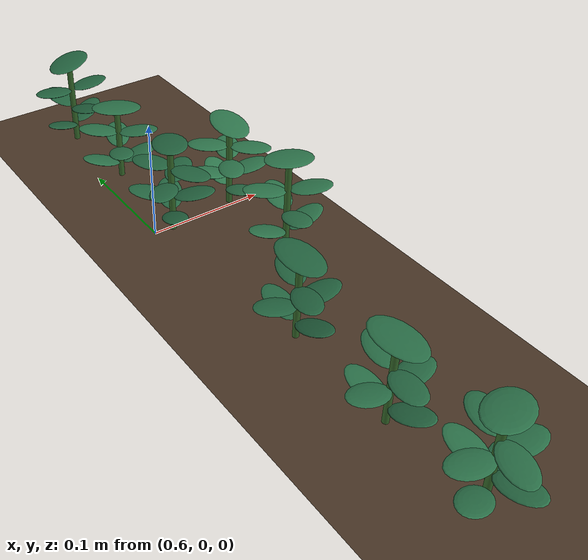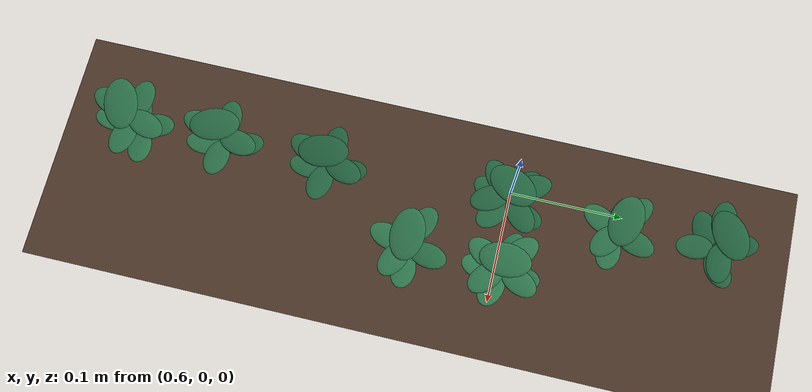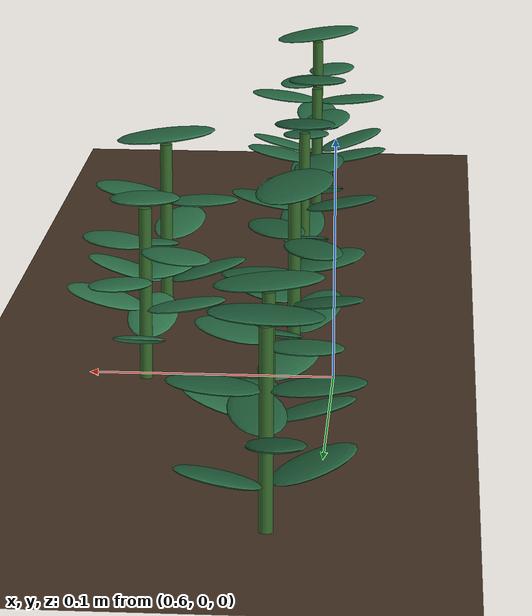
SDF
<sdf version="1.9">
 <world name="jim_field">
  <model name="ground_plane">
   <static>true</static>
   <link name="link">
    <collision name="collision">
     <geometry><plane><normal>0 0 1</normal><size>40 40</size></plane></geometry>
    </collision>
    <visual name="visual">
     <geometry><plane><normal>0 0 1</normal><size>40 40</size></plane></geometry>
     <material>
      <ambient>0.20 0.15 0.11 1</ambient>
      <diffuse>0.30 0.22 0.16 1</diffuse>
      <specular>0.01 0.01 0.01 1</specular>
     </material>
    </visual>
   </link>
  </model>
  <model name="field">
   <static>true</static>
   <pose>0.1837 -0.2516 0 0 0 0</pose>
   <model name="crop_83">
    <static>true</static>
    <pose>0.4379 -0.0803 0 0 0 0</pose>
    <link name="link">
     <visual name="stem">
      <pose>0 0 0.0381 0 0 0</pose>
      <geometry><cylinder><radius>0.0026</radius><length>0.0761</length></cylinder></geometry>
      <material>
       <ambient>0.10 0.22 0.09 1</ambient>
       <diffuse>0.20 0.40 0.16 1</diffuse>
       <specular>0.05 0.06 0.05 1</specular>
      </material>
     </visual>
     <visual name="leaflet_0_0">
      <pose>-0.0173 -0.0051 0.0228 0 -0.300 3.4297</pose>
      <geometry><ellipsoid><radii>0.0170 0.0105 0.0016</radii></ellipsoid></geometry>
      <material>
       <ambient>0.088 0.230 0.134 1</ambient>
       <diffuse>0.166 0.440 0.282 1</diffuse>
       <specular>0.05 0.06 0.05 1</specular>
      </material>
     </visual>
     <visual name="leaflet_0_1">
      <pose>0.0173 0.0051 0.0228 0 -0.300 6.5713</pose>
      <geometry><ellipsoid><radii>0.0170 0.0105 0.0016</radii></ellipsoid></geometry>
      <material>
       <ambient>0.088 0.230 0.134 1</ambient>
       <diffuse>0.166 0.440 0.282 1</diffuse>
       <specular>0.05 0.06 0.05 1</specular>
      </material>
     </visual>
     <visual name="leaflet_1_0">
      <pose>0.0012 -0.0180 0.0346 0 -0.200 4.7797</pose>
      <geometry><ellipsoid><radii>0.0170 0.0105 0.0016</radii></ellipsoid></geometry>
      <material>
       <ambient>0.088 0.230 0.134 1</ambient>
       <diffuse>0.166 0.440 0.282 1</diffuse>
       <specular>0.05 0.06 0.05 1</specular>
      </material>
     </visual>
     <visual name="leaflet_1_1">
      <pose>-0.0012 0.0180 0.0346 0 -0.200 7.9213</pose>
      <geometry><ellipsoid><radii>0.0170 0.0105 0.0016</radii></ellipsoid></geometry>
      <material>
       <ambient>0.088 0.230 0.134 1</ambient>
       <diffuse>0.166 0.440 0.282 1</diffuse>
       <specular>0.05 0.06 0.05 1</specular>
      </material>
     </visual>
     <visual name="leaflet_2_0">
      <pose>0.0178 -0.0028 0.0464 0 -0.100 6.1297</pose>
      <geometry><ellipsoid><radii>0.0170 0.0105 0.0016</radii></ellipsoid></geometry>
      <material>
       <ambient>0.088 0.230 0.134 1</ambient>
       <diffuse>0.166 0.440 0.282 1</diffuse>
       <specular>0.05 0.06 0.05 1</specular>
      </material>
     </visual>
     <visual name="leaflet_2_1">
      <pose>-0.0178 0.0028 0.0464 0 -0.100 9.2713</pose>
      <geometry><ellipsoid><radii>0.0170 0.0105 0.0016</radii></ellipsoid></geometry>
      <material>
       <ambient>0.088 0.230 0.134 1</ambient>
       <diffuse>0.166 0.440 0.282 1</diffuse>
       <specular>0.05 0.06 0.05 1</specular>
      </material>
     </visual>
     <visual name="leaflet_3_0">
      <pose>0.0066 0.0168 0.0583 0 0.000 7.4797</pose>
      <geometry><ellipsoid><radii>0.0170 0.0105 0.0016</radii></ellipsoid></geometry>
      <material>
       <ambient>0.088 0.230 0.134 1</ambient>
       <diffuse>0.166 0.440 0.282 1</diffuse>
       <specular>0.05 0.06 0.05 1</specular>
      </material>
     </visual>
     <visual name="leaflet_3_1">
      <pose>-0.0066 -0.0168 0.0583 0 0.000 10.6213</pose>
      <geometry><ellipsoid><radii>0.0170 0.0105 0.0016</radii></ellipsoid></geometry>
      <material>
       <ambient>0.088 0.230 0.134 1</ambient>
       <diffuse>0.166 0.440 0.282 1</diffuse>
       <specular>0.05 0.06 0.05 1</specular>
      </material>
     </visual>
     <visual name="leaflet_terminal">
      <pose>0 0 0.0801 0 -0.12 3.4297</pose>
      <geometry><ellipsoid><radii>0.0215 0.0140 0.0018</radii></ellipsoid></geometry>
      <material>
       <ambient>0.088 0.230 0.134 1</ambient>
       <diffuse>0.166 0.440 0.282 1</diffuse>
       <specular>0.05 0.06 0.05 1</specular>
      </material>
     </visual>
    </link>
   </model>
   <model name="crop_100">
    <static>true</static>
    <pose>0.4349 -0.0025 0 0 0 0</pose>
    <link name="link">
     <visual name="stem">
      <pose>0 0 0.0337 0 0 0</pose>
      <geometry><cylinder><radius>0.0025</radius><length>0.0674</length></cylinder></geometry>
      <material>
       <ambient>0.10 0.22 0.09 1</ambient>
       <diffuse>0.20 0.40 0.16 1</diffuse>
       <specular>0.05 0.06 0.05 1</specular>
      </material>
     </visual>
     <visual name="leaflet_0_0">
      <pose>-0.0032 0.0173 0.0202 0 -0.300 1.7517</pose>
      <geometry><ellipsoid><radii>0.0170 0.0105 0.0016</radii></ellipsoid></geometry>
      <material>
       <ambient>0.084 0.223 0.128 1</ambient>
       <diffuse>0.157 0.425 0.272 1</diffuse>
       <specular>0.05 0.06 0.05 1</specular>
      </material>
     </visual>
     <visual name="leaflet_0_1">
      <pose>0.0032 -0.0173 0.0202 0 -0.300 4.8933</pose>
      <geometry><ellipsoid><radii>0.0170 0.0105 0.0016</radii></ellipsoid></geometry>
      <material>
       <ambient>0.084 0.223 0.128 1</ambient>
       <diffuse>0.157 0.425 0.272 1</diffuse>
       <specular>0.05 0.06 0.05 1</specular>
      </material>
     </visual>
     <visual name="leaflet_1_0">
      <pose>-0.0176 0.0007 0.0341 0 -0.200 3.1017</pose>
      <geometry><ellipsoid><radii>0.0170 0.0105 0.0016</radii></ellipsoid></geometry>
      <material>
       <ambient>0.084 0.223 0.128 1</ambient>
       <diffuse>0.157 0.425 0.272 1</diffuse>
       <specular>0.05 0.06 0.05 1</specular>
      </material>
     </visual>
     <visual name="leaflet_1_1">
      <pose>0.0176 -0.0007 0.0341 0 -0.200 6.2433</pose>
      <geometry><ellipsoid><radii>0.0170 0.0105 0.0016</radii></ellipsoid></geometry>
      <material>
       <ambient>0.084 0.223 0.128 1</ambient>
       <diffuse>0.157 0.425 0.272 1</diffuse>
       <specular>0.05 0.06 0.05 1</specular>
      </material>
     </visual>
     <visual name="leaflet_2_0">
      <pose>-0.0045 -0.0170 0.0481 0 -0.100 4.4517</pose>
      <geometry><ellipsoid><radii>0.0170 0.0105 0.0016</radii></ellipsoid></geometry>
      <material>
       <ambient>0.084 0.223 0.128 1</ambient>
       <diffuse>0.157 0.425 0.272 1</diffuse>
       <specular>0.05 0.06 0.05 1</specular>
      </material>
     </visual>
     <visual name="leaflet_2_1">
      <pose>0.0045 0.0170 0.0481 0 -0.100 7.5933</pose>
      <geometry><ellipsoid><radii>0.0170 0.0105 0.0016</radii></ellipsoid></geometry>
      <material>
       <ambient>0.084 0.223 0.128 1</ambient>
       <diffuse>0.157 0.425 0.272 1</diffuse>
       <specular>0.05 0.06 0.05 1</specular>
      </material>
     </visual>
     <visual name="leaflet_terminal">
      <pose>0 0 0.0714 0 -0.12 1.7517</pose>
      <geometry><ellipsoid><radii>0.0215 0.0140 0.0018</radii></ellipsoid></geometry>
      <material>
       <ambient>0.084 0.223 0.128 1</ambient>
       <diffuse>0.157 0.425 0.272 1</diffuse>
       <specular>0.05 0.06 0.05 1</specular>
      </material>
     </visual>
    </link>
   </model>
   <model name="crop_117">
    <static>true</static>
    <pose>0.4364 0.0913 0 0 0 0</pose>
    <link name="link">
     <visual name="stem">
      <pose>0 0 0.0331 0 0 0</pose>
      <geometry><cylinder><radius>0.0025</radius><length>0.0662</length></cylinder></geometry>
      <material>
       <ambient>0.10 0.22 0.09 1</ambient>
       <diffuse>0.20 0.40 0.16 1</diffuse>
       <specular>0.05 0.06 0.05 1</specular>
      </material>
     </visual>
     <visual name="leaflet_0_0">
      <pose>-0.0016 0.0175 0.0199 0 -0.300 1.6620</pose>
      <geometry><ellipsoid><radii>0.0170 0.0105 0.0016</radii></ellipsoid></geometry>
      <material>
       <ambient>0.072 0.204 0.113 1</ambient>
       <diffuse>0.135 0.388 0.246 1</diffuse>
       <specular>0.05 0.06 0.05 1</specular>
      </material>
     </visual>
     <visual name="leaflet_0_1">
      <pose>0.0016 -0.0175 0.0199 0 -0.300 4.8036</pose>
      <geometry><ellipsoid><radii>0.0170 0.0105 0.0016</radii></ellipsoid></geometry>
      <material>
       <ambient>0.072 0.204 0.113 1</ambient>
       <diffuse>0.135 0.388 0.246 1</diffuse>
       <specular>0.05 0.06 0.05 1</specular>
      </material>
     </visual>
     <visual name="leaflet_1_0">
      <pose>-0.0174 0.0023 0.0336 0 -0.200 3.0120</pose>
      <geometry><ellipsoid><radii>0.0170 0.0105 0.0016</radii></ellipsoid></geometry>
      <material>
       <ambient>0.072 0.204 0.113 1</ambient>
       <diffuse>0.135 0.388 0.246 1</diffuse>
       <specular>0.05 0.06 0.05 1</specular>
      </material>
     </visual>
     <visual name="leaflet_1_1">
      <pose>0.0174 -0.0023 0.0336 0 -0.200 6.1536</pose>
      <geometry><ellipsoid><radii>0.0170 0.0105 0.0016</radii></ellipsoid></geometry>
      <material>
       <ambient>0.072 0.204 0.113 1</ambient>
       <diffuse>0.135 0.388 0.246 1</diffuse>
       <specular>0.05 0.06 0.05 1</specular>
      </material>
     </visual>
     <visual name="leaflet_2_0">
      <pose>-0.0060 -0.0165 0.0472 0 -0.100 4.3620</pose>
      <geometry><ellipsoid><radii>0.0170 0.0105 0.0016</radii></ellipsoid></geometry>
      <material>
       <ambient>0.072 0.204 0.113 1</ambient>
       <diffuse>0.135 0.388 0.246 1</diffuse>
       <specular>0.05 0.06 0.05 1</specular>
      </material>
     </visual>
     <visual name="leaflet_2_1">
      <pose>0.0060 0.0165 0.0472 0 -0.100 7.5036</pose>
      <geometry><ellipsoid><radii>0.0170 0.0105 0.0016</radii></ellipsoid></geometry>
      <material>
       <ambient>0.072 0.204 0.113 1</ambient>
       <diffuse>0.135 0.388 0.246 1</diffuse>
       <specular>0.05 0.06 0.05 1</specular>
      </material>
     </visual>
     <visual name="leaflet_terminal">
      <pose>0 0 0.0702 0 -0.12 1.6620</pose>
      <geometry><ellipsoid><radii>0.0215 0.0140 0.0018</radii></ellipsoid></geometry>
      <material>
       <ambient>0.072 0.204 0.113 1</ambient>
       <diffuse>0.135 0.388 0.246 1</diffuse>
       <specular>0.05 0.06 0.05 1</specular>
      </material>
     </visual>
    </link>
   </model>
   <model name="crop_135">
    <static>true</static>
    <pose>0.4921 0.1763 0 0 0 0</pose>
    <link name="link">
     <visual name="stem">
      <pose>0 0 0.0397 0 0 0</pose>
      <geometry><cylinder><radius>0.0026</radius><length>0.0794</length></cylinder></geometry>
      <material>
       <ambient>0.10 0.22 0.09 1</ambient>
       <diffuse>0.20 0.40 0.16 1</diffuse>
       <specular>0.05 0.06 0.05 1</specular>
      </material>
     </visual>
     <visual name="leaflet_0_0">
      <pose>-0.0182 0.0002 0.0238 0 -0.300 3.1298</pose>
      <geometry><ellipsoid><radii>0.0170 0.0105 0.0016</radii></ellipsoid></geometry>
      <material>
       <ambient>0.091 0.236 0.139 1</ambient>
       <diffuse>0.173 0.452 0.290 1</diffuse>
       <specular>0.05 0.06 0.05 1</specular>
      </material>
     </visual>
     <visual name="leaflet_0_1">
      <pose>0.0182 -0.0002 0.0238 0 -0.300 6.2714</pose>
      <geometry><ellipsoid><radii>0.0170 0.0105 0.0016</radii></ellipsoid></geometry>
      <material>
       <ambient>0.091 0.236 0.139 1</ambient>
       <diffuse>0.173 0.452 0.290 1</diffuse>
       <specular>0.05 0.06 0.05 1</specular>
      </material>
     </visual>
     <visual name="leaflet_1_0">
      <pose>-0.0042 -0.0177 0.0402 0 -0.200 4.4798</pose>
      <geometry><ellipsoid><radii>0.0170 0.0105 0.0016</radii></ellipsoid></geometry>
      <material>
       <ambient>0.091 0.236 0.139 1</ambient>
       <diffuse>0.173 0.452 0.290 1</diffuse>
       <specular>0.05 0.06 0.05 1</specular>
      </material>
     </visual>
     <visual name="leaflet_1_1">
      <pose>0.0042 0.0177 0.0402 0 -0.200 7.6214</pose>
      <geometry><ellipsoid><radii>0.0170 0.0105 0.0016</radii></ellipsoid></geometry>
      <material>
       <ambient>0.091 0.236 0.139 1</ambient>
       <diffuse>0.173 0.452 0.290 1</diffuse>
       <specular>0.05 0.06 0.05 1</specular>
      </material>
     </visual>
     <visual name="leaflet_2_0">
      <pose>0.0164 -0.0080 0.0567 0 -0.100 5.8298</pose>
      <geometry><ellipsoid><radii>0.0170 0.0105 0.0016</radii></ellipsoid></geometry>
      <material>
       <ambient>0.091 0.236 0.139 1</ambient>
       <diffuse>0.173 0.452 0.290 1</diffuse>
       <specular>0.05 0.06 0.05 1</specular>
      </material>
     </visual>
     <visual name="leaflet_2_1">
      <pose>-0.0164 0.0080 0.0567 0 -0.100 8.9714</pose>
      <geometry><ellipsoid><radii>0.0170 0.0105 0.0016</radii></ellipsoid></geometry>
      <material>
       <ambient>0.091 0.236 0.139 1</ambient>
       <diffuse>0.173 0.452 0.290 1</diffuse>
       <specular>0.05 0.06 0.05 1</specular>
      </material>
     </visual>
     <visual name="leaflet_terminal">
      <pose>0 0 0.0834 0 -0.12 3.1298</pose>
      <geometry><ellipsoid><radii>0.0215 0.0140 0.0018</radii></ellipsoid></geometry>
      <material>
       <ambient>0.091 0.236 0.139 1</ambient>
       <diffuse>0.173 0.452 0.290 1</diffuse>
       <specular>0.05 0.06 0.05 1</specular>
      </material>
     </visual>
    </link>
   </model>
   <model name="crop_151">
    <static>true</static>
    <pose>0.4327 0.2500 0 0 0 0</pose>
    <link name="link">
     <visual name="stem">
      <pose>0 0 0.0380 0 0 0</pose>
      <geometry><cylinder><radius>0.0026</radius><length>0.0759</length></cylinder></geometry>
      <material>
       <ambient>0.10 0.22 0.09 1</ambient>
       <diffuse>0.20 0.40 0.16 1</diffuse>
       <specular>0.05 0.06 0.05 1</specular>
      </material>
     </visual>
     <visual name="leaflet_0_0">
      <pose>-0.0075 -0.0164 0.0228 0 -0.300 4.2817</pose>
      <geometry><ellipsoid><radii>0.0170 0.0105 0.0016</radii></ellipsoid></geometry>
      <material>
       <ambient>0.075 0.209 0.117 1</ambient>
       <diffuse>0.141 0.398 0.253 1</diffuse>
       <specular>0.05 0.06 0.05 1</specular>
      </material>
     </visual>
     <visual name="leaflet_0_1">
      <pose>0.0075 0.0164 0.0228 0 -0.300 7.4233</pose>
      <geometry><ellipsoid><radii>0.0170 0.0105 0.0016</radii></ellipsoid></geometry>
      <material>
       <ambient>0.075 0.209 0.117 1</ambient>
       <diffuse>0.141 0.398 0.253 1</diffuse>
       <specular>0.05 0.06 0.05 1</specular>
      </material>
     </visual>
     <visual name="leaflet_1_0">
      <pose>0.0144 -0.0109 0.0346 0 -0.200 5.6317</pose>
      <geometry><ellipsoid><radii>0.0170 0.0105 0.0016</radii></ellipsoid></geometry>
      <material>
       <ambient>0.075 0.209 0.117 1</ambient>
       <diffuse>0.141 0.398 0.253 1</diffuse>
       <specular>0.05 0.06 0.05 1</specular>
      </material>
     </visual>
     <visual name="leaflet_1_1">
      <pose>-0.0144 0.0109 0.0346 0 -0.200 8.7733</pose>
      <geometry><ellipsoid><radii>0.0170 0.0105 0.0016</radii></ellipsoid></geometry>
      <material>
       <ambient>0.075 0.209 0.117 1</ambient>
       <diffuse>0.141 0.398 0.253 1</diffuse>
       <specular>0.05 0.06 0.05 1</specular>
      </material>
     </visual>
     <visual name="leaflet_2_0">
      <pose>0.0138 0.0116 0.0463 0 -0.100 6.9817</pose>
      <geometry><ellipsoid><radii>0.0170 0.0105 0.0016</radii></ellipsoid></geometry>
      <material>
       <ambient>0.075 0.209 0.117 1</ambient>
       <diffuse>0.141 0.398 0.253 1</diffuse>
       <specular>0.05 0.06 0.05 1</specular>
      </material>
     </visual>
     <visual name="leaflet_2_1">
      <pose>-0.0138 -0.0116 0.0463 0 -0.100 10.1233</pose>
      <geometry><ellipsoid><radii>0.0170 0.0105 0.0016</radii></ellipsoid></geometry>
      <material>
       <ambient>0.075 0.209 0.117 1</ambient>
       <diffuse>0.141 0.398 0.253 1</diffuse>
       <specular>0.05 0.06 0.05 1</specular>
      </material>
     </visual>
     <visual name="leaflet_3_0">
      <pose>-0.0083 0.0160 0.0581 0 0.000 8.3317</pose>
      <geometry><ellipsoid><radii>0.0170 0.0105 0.0016</radii></ellipsoid></geometry>
      <material>
       <ambient>0.075 0.209 0.117 1</ambient>
       <diffuse>0.141 0.398 0.253 1</diffuse>
       <specular>0.05 0.06 0.05 1</specular>
      </material>
     </visual>
     <visual name="leaflet_3_1">
      <pose>0.0083 -0.0160 0.0581 0 0.000 11.4733</pose>
      <geometry><ellipsoid><radii>0.0170 0.0105 0.0016</radii></ellipsoid></geometry>
      <material>
       <ambient>0.075 0.209 0.117 1</ambient>
       <diffuse>0.141 0.398 0.253 1</diffuse>
       <specular>0.05 0.06 0.05 1</specular>
      </material>
     </visual>
     <visual name="leaflet_terminal">
      <pose>0 0 0.0799 0 -0.12 4.2817</pose>
      <geometry><ellipsoid><radii>0.0215 0.0140 0.0018</radii></ellipsoid></geometry>
      <material>
       <ambient>0.075 0.209 0.117 1</ambient>
       <diffuse>0.141 0.398 0.253 1</diffuse>
       <specular>0.05 0.06 0.05 1</specular>
      </material>
     </visual>
    </link>
   </model>
   <model name="crop_152">
    <static>true</static>
    <pose>0.4928 0.2565 0 0 0 0</pose>
    <link name="link">
     <visual name="stem">
      <pose>0 0 0.0357 0 0 0</pose>
      <geometry><cylinder><radius>0.0026</radius><length>0.0715</length></cylinder></geometry>
      <material>
       <ambient>0.10 0.22 0.09 1</ambient>
       <diffuse>0.20 0.40 0.16 1</diffuse>
       <specular>0.05 0.06 0.05 1</specular>
      </material>
     </visual>
     <visual name="leaflet_0_0">
      <pose>0.0010 0.0178 0.0214 0 -0.300 1.5124</pose>
      <geometry><ellipsoid><radii>0.0170 0.0105 0.0016</radii></ellipsoid></geometry>
      <material>
       <ambient>0.097 0.246 0.147 1</ambient>
       <diffuse>0.185 0.471 0.304 1</diffuse>
       <specular>0.05 0.06 0.05 1</specular>
      </material>
     </visual>
     <visual name="leaflet_0_1">
      <pose>-0.0010 -0.0178 0.0214 0 -0.300 4.6540</pose>
      <geometry><ellipsoid><radii>0.0170 0.0105 0.0016</radii></ellipsoid></geometry>
      <material>
       <ambient>0.097 0.246 0.147 1</ambient>
       <diffuse>0.185 0.471 0.304 1</diffuse>
       <specular>0.05 0.06 0.05 1</specular>
      </material>
     </visual>
     <visual name="leaflet_1_0">
      <pose>-0.0171 0.0049 0.0325 0 -0.200 2.8624</pose>
      <geometry><ellipsoid><radii>0.0170 0.0105 0.0016</radii></ellipsoid></geometry>
      <material>
       <ambient>0.097 0.246 0.147 1</ambient>
       <diffuse>0.185 0.471 0.304 1</diffuse>
       <specular>0.05 0.06 0.05 1</specular>
      </material>
     </visual>
     <visual name="leaflet_1_1">
      <pose>0.0171 -0.0049 0.0325 0 -0.200 6.0040</pose>
      <geometry><ellipsoid><radii>0.0170 0.0105 0.0016</radii></ellipsoid></geometry>
      <material>
       <ambient>0.097 0.246 0.147 1</ambient>
       <diffuse>0.185 0.471 0.304 1</diffuse>
       <specular>0.05 0.06 0.05 1</specular>
      </material>
     </visual>
     <visual name="leaflet_2_0">
      <pose>-0.0085 -0.0156 0.0436 0 -0.100 4.2124</pose>
      <geometry><ellipsoid><radii>0.0170 0.0105 0.0016</radii></ellipsoid></geometry>
      <material>
       <ambient>0.097 0.246 0.147 1</ambient>
       <diffuse>0.185 0.471 0.304 1</diffuse>
       <specular>0.05 0.06 0.05 1</specular>
      </material>
     </visual>
     <visual name="leaflet_2_1">
      <pose>0.0085 0.0156 0.0436 0 -0.100 7.3540</pose>
      <geometry><ellipsoid><radii>0.0170 0.0105 0.0016</radii></ellipsoid></geometry>
      <material>
       <ambient>0.097 0.246 0.147 1</ambient>
       <diffuse>0.185 0.471 0.304 1</diffuse>
       <specular>0.05 0.06 0.05 1</specular>
      </material>
     </visual>
     <visual name="leaflet_3_0">
      <pose>0.0134 -0.0118 0.0547 0 0.000 5.5624</pose>
      <geometry><ellipsoid><radii>0.0170 0.0105 0.0016</radii></ellipsoid></geometry>
      <material>
       <ambient>0.097 0.246 0.147 1</ambient>
       <diffuse>0.185 0.471 0.304 1</diffuse>
       <specular>0.05 0.06 0.05 1</specular>
      </material>
     </visual>
     <visual name="leaflet_3_1">
      <pose>-0.0134 0.0118 0.0547 0 0.000 8.7040</pose>
      <geometry><ellipsoid><radii>0.0170 0.0105 0.0016</radii></ellipsoid></geometry>
      <material>
       <ambient>0.097 0.246 0.147 1</ambient>
       <diffuse>0.185 0.471 0.304 1</diffuse>
       <specular>0.05 0.06 0.05 1</specular>
      </material>
     </visual>
     <visual name="leaflet_terminal">
      <pose>0 0 0.0755 0 -0.12 1.5124</pose>
      <geometry><ellipsoid><radii>0.0215 0.0140 0.0018</radii></ellipsoid></geometry>
      <material>
       <ambient>0.097 0.246 0.147 1</ambient>
       <diffuse>0.185 0.471 0.304 1</diffuse>
       <specular>0.05 0.06 0.05 1</specular>
      </material>
     </visual>
    </link>
   </model>
   <model name="crop_168">
    <static>true</static>
    <pose>0.4372 0.3462 0 0 0 0</pose>
    <link name="link">
     <visual name="stem">
      <pose>0 0 0.0316 0 0 0</pose>
      <geometry><cylinder><radius>0.0025</radius><length>0.0633</length></cylinder></geometry>
      <material>
       <ambient>0.10 0.22 0.09 1</ambient>
       <diffuse>0.20 0.40 0.16 1</diffuse>
       <specular>0.05 0.06 0.05 1</specular>
      </material>
     </visual>
     <visual name="leaflet_0_0">
      <pose>-0.0171 0.0031 0.0190 0 -0.300 2.9609</pose>
      <geometry><ellipsoid><radii>0.0170 0.0105 0.0016</radii></ellipsoid></geometry>
      <material>
       <ambient>0.089 0.231 0.135 1</ambient>
       <diffuse>0.167 0.442 0.283 1</diffuse>
       <specular>0.05 0.06 0.05 1</specular>
      </material>
     </visual>
     <visual name="leaflet_0_1">
      <pose>0.0171 -0.0031 0.0190 0 -0.300 6.1025</pose>
      <geometry><ellipsoid><radii>0.0170 0.0105 0.0016</radii></ellipsoid></geometry>
      <material>
       <ambient>0.089 0.231 0.135 1</ambient>
       <diffuse>0.167 0.442 0.283 1</diffuse>
       <specular>0.05 0.06 0.05 1</specular>
      </material>
     </visual>
     <visual name="leaflet_1_0">
      <pose>-0.0068 -0.0160 0.0320 0 -0.200 4.3109</pose>
      <geometry><ellipsoid><radii>0.0170 0.0105 0.0016</radii></ellipsoid></geometry>
      <material>
       <ambient>0.089 0.231 0.135 1</ambient>
       <diffuse>0.167 0.442 0.283 1</diffuse>
       <specular>0.05 0.06 0.05 1</specular>
      </material>
     </visual>
     <visual name="leaflet_1_1">
      <pose>0.0068 0.0160 0.0320 0 -0.200 7.4525</pose>
      <geometry><ellipsoid><radii>0.0170 0.0105 0.0016</radii></ellipsoid></geometry>
      <material>
       <ambient>0.089 0.231 0.135 1</ambient>
       <diffuse>0.167 0.442 0.283 1</diffuse>
       <specular>0.05 0.06 0.05 1</specular>
      </material>
     </visual>
     <visual name="leaflet_2_0">
      <pose>0.0141 -0.0101 0.0451 0 -0.100 5.6609</pose>
      <geometry><ellipsoid><radii>0.0170 0.0105 0.0016</radii></ellipsoid></geometry>
      <material>
       <ambient>0.089 0.231 0.135 1</ambient>
       <diffuse>0.167 0.442 0.283 1</diffuse>
       <specular>0.05 0.06 0.05 1</specular>
      </material>
     </visual>
     <visual name="leaflet_2_1">
      <pose>-0.0141 0.0101 0.0451 0 -0.100 8.8025</pose>
      <geometry><ellipsoid><radii>0.0170 0.0105 0.0016</radii></ellipsoid></geometry>
      <material>
       <ambient>0.089 0.231 0.135 1</ambient>
       <diffuse>0.167 0.442 0.283 1</diffuse>
       <specular>0.05 0.06 0.05 1</specular>
      </material>
     </visual>
     <visual name="leaflet_terminal">
      <pose>0 0 0.0673 0 -0.12 2.9609</pose>
      <geometry><ellipsoid><radii>0.0215 0.0140 0.0018</radii></ellipsoid></geometry>
      <material>
       <ambient>0.089 0.231 0.135 1</ambient>
       <diffuse>0.167 0.442 0.283 1</diffuse>
       <specular>0.05 0.06 0.05 1</specular>
      </material>
     </visual>
    </link>
   </model>
   <model name="crop_185">
    <static>true</static>
    <pose>0.4330 0.4276 0 0 0 0</pose>
    <link name="link">
     <visual name="stem">
      <pose>0 0 0.0374 0 0 0</pose>
      <geometry><cylinder><radius>0.0026</radius><length>0.0747</length></cylinder></geometry>
      <material>
       <ambient>0.10 0.22 0.09 1</ambient>
       <diffuse>0.20 0.40 0.16 1</diffuse>
       <specular>0.05 0.06 0.05 1</specular>
      </material>
     </visual>
     <visual name="leaflet_0_0">
      <pose>0.0161 0.0080 0.0224 0 -0.300 0.4615</pose>
      <geometry><ellipsoid><radii>0.0170 0.0105 0.0016</radii></ellipsoid></geometry>
      <material>
       <ambient>0.072 0.204 0.113 1</ambient>
       <diffuse>0.135 0.388 0.246 1</diffuse>
       <specular>0.05 0.06 0.05 1</specular>
      </material>
     </visual>
     <visual name="leaflet_0_1">
      <pose>-0.0161 -0.0080 0.0224 0 -0.300 3.6031</pose>
      <geometry><ellipsoid><radii>0.0170 0.0105 0.0016</radii></ellipsoid></geometry>
      <material>
       <ambient>0.072 0.204 0.113 1</ambient>
       <diffuse>0.135 0.388 0.246 1</diffuse>
       <specular>0.05 0.06 0.05 1</specular>
      </material>
     </visual>
     <visual name="leaflet_1_0">
      <pose>-0.0043 0.0175 0.0379 0 -0.200 1.8115</pose>
      <geometry><ellipsoid><radii>0.0170 0.0105 0.0016</radii></ellipsoid></geometry>
      <material>
       <ambient>0.072 0.204 0.113 1</ambient>
       <diffuse>0.135 0.388 0.246 1</diffuse>
       <specular>0.05 0.06 0.05 1</specular>
      </material>
     </visual>
     <visual name="leaflet_1_1">
      <pose>0.0043 -0.0175 0.0379 0 -0.200 4.9531</pose>
      <geometry><ellipsoid><radii>0.0170 0.0105 0.0016</radii></ellipsoid></geometry>
      <material>
       <ambient>0.072 0.204 0.113 1</ambient>
       <diffuse>0.135 0.388 0.246 1</diffuse>
       <specular>0.05 0.06 0.05 1</specular>
      </material>
     </visual>
     <visual name="leaflet_2_0">
      <pose>-0.0180 -0.0004 0.0533 0 -0.100 3.1615</pose>
      <geometry><ellipsoid><radii>0.0170 0.0105 0.0016</radii></ellipsoid></geometry>
      <material>
       <ambient>0.072 0.204 0.113 1</ambient>
       <diffuse>0.135 0.388 0.246 1</diffuse>
       <specular>0.05 0.06 0.05 1</specular>
      </material>
     </visual>
     <visual name="leaflet_2_1">
      <pose>0.0180 0.0004 0.0533 0 -0.100 6.3031</pose>
      <geometry><ellipsoid><radii>0.0170 0.0105 0.0016</radii></ellipsoid></geometry>
      <material>
       <ambient>0.072 0.204 0.113 1</ambient>
       <diffuse>0.135 0.388 0.246 1</diffuse>
       <specular>0.05 0.06 0.05 1</specular>
      </material>
     </visual>
     <visual name="leaflet_terminal">
      <pose>0 0 0.0787 0 -0.12 0.4615</pose>
      <geometry><ellipsoid><radii>0.0215 0.0140 0.0018</radii></ellipsoid></geometry>
      <material>
       <ambient>0.072 0.204 0.113 1</ambient>
       <diffuse>0.135 0.388 0.246 1</diffuse>
       <specular>0.05 0.06 0.05 1</specular>
      </material>
     </visual>
    </link>
   </model>
  </model>
 </world>
</sdf>
